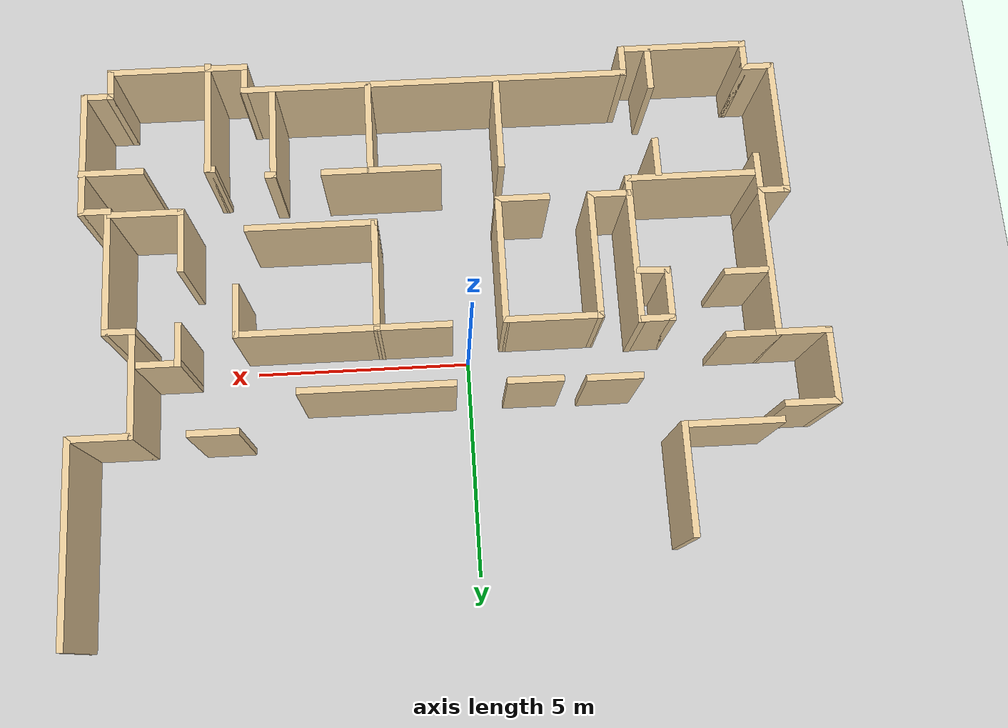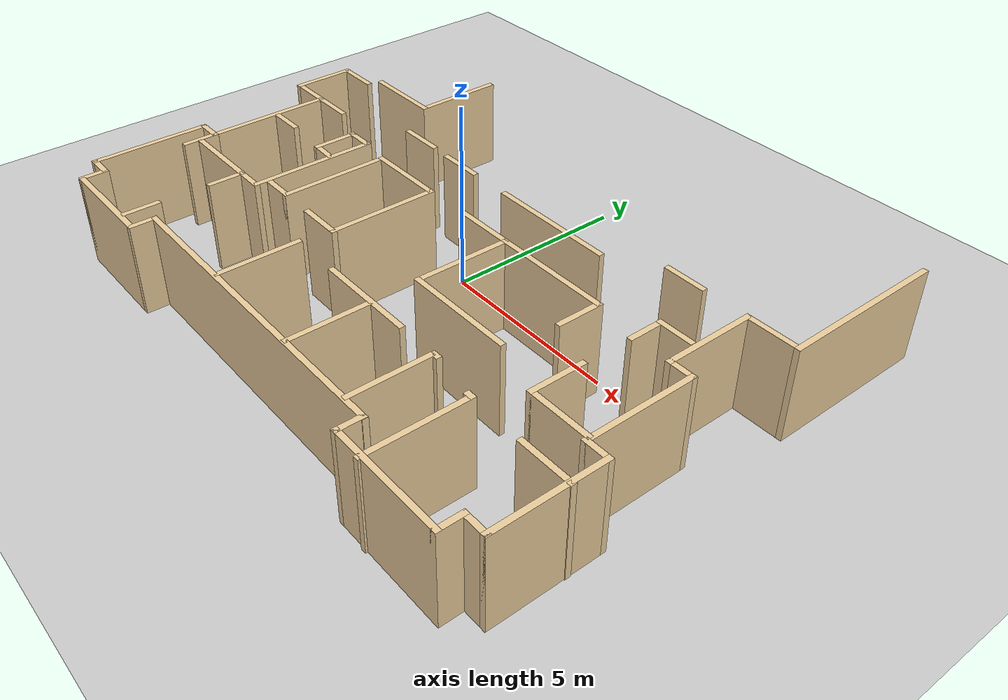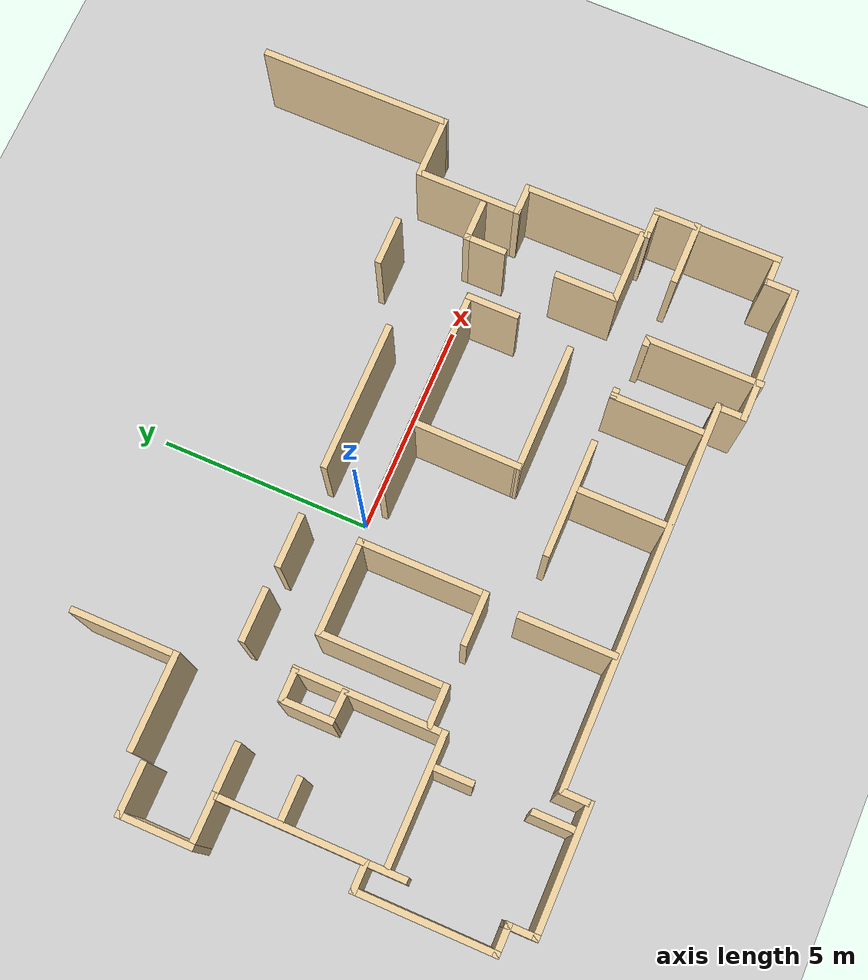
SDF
<sdf version="1.6">
 <world name="default">
  <model name="ground_plane">
   <static>1</static>
   <link name="link">
    <collision name="collision">
     <geometry><plane><normal>0 0 1</normal><size>100 100</size></plane></geometry>
     <surface><friction><ode><mu>100</mu><mu2>50</mu2></ode></friction></surface>
    </collision>
    <visual name="visual">
     <cast_shadows>0</cast_shadows>
     <geometry><plane><normal>0 0 1</normal><size>100 100</size></plane></geometry>
     <material>
      <script><uri>file://media/materials/scripts/gazebo.material</uri><name>Gazebo/Grey</name></script>
     </material>
    </visual>
   </link>
  </model>
  <model name="ASTI_Floor_plan">
   <pose>0.499295 4.1368 0 0 -0 0</pose>
   <link name="Wall_126">
    <collision name="Wall_126_Collision">
     <geometry><box><size>1.25 0.15 2.5</size></box></geometry>
     <pose>0 0 1.25 0 -0 0</pose>
    </collision>
    <visual name="Wall_126_Visual">
     <pose>0 0 1.25 0 -0 0</pose>
     <geometry><box><size>1.25 0.15 2.5</size></box></geometry>
     <material>
      <script><uri>file://media/materials/scripts/gazebo.material</uri><name>Gazebo/Grey</name></script>
      <ambient>0.921569 0.807843 0.615686 1</ambient>
     </material>
    </visual>
    <pose>-6.73175 -3.8985 0 0 -0 0</pose>
   </link>
   <link name="Wall_129">
    <collision name="Wall_129_Collision">
     <geometry><box><size>1 0.15 2.5</size></box></geometry>
     <pose>0 0 1.25 0 -0 0</pose>
    </collision>
    <visual name="Wall_129_Visual">
     <pose>0 0 1.25 0 -0 0</pose>
     <geometry><box><size>1 0.15 2.5</size></box></geometry>
     <material>
      <script><uri>file://media/materials/scripts/gazebo.material</uri><name>Gazebo/Grey</name></script>
      <ambient>0.921569 0.807843 0.615686 1</ambient>
     </material>
    </visual>
    <pose>-6.73747 -5.34893 0 0 -0 3.14159</pose>
   </link>
   <link name="Wall_132">
    <collision name="Wall_132_Collision">
     <geometry><box><size>1.25 0.15 2.5</size></box></geometry>
     <pose>0 0 1.25 0 -0 0</pose>
    </collision>
    <visual name="Wall_132_Visual">
     <pose>0 0 1.25 0 -0 0</pose>
     <geometry><box><size>1.25 0.15 2.5</size></box></geometry>
     <material>
      <script><uri>file://media/materials/scripts/gazebo.material</uri><name>Gazebo/Grey</name></script>
      <ambient>0.921569 0.807843 0.615686 1</ambient>
     </material>
    </visual>
    <pose>-4.97877 -4.90514 0 0 0 -1.5708</pose>
   </link>
   <link name="Wall_133">
    <collision name="Wall_133_Collision">
     <geometry><box><size>0.753676 0.15 2.5</size></box></geometry>
     <pose>0 0 1.25 0 -0 0</pose>
    </collision>
    <visual name="Wall_133_Visual">
     <pose>0 0 1.25 0 -0 0</pose>
     <geometry><box><size>0.753676 0.15 2.5</size></box></geometry>
     <material>
      <script><uri>file://media/materials/scripts/gazebo.material</uri><name>Gazebo/Grey</name></script>
      <ambient>0.921569 0.807843 0.615686 1</ambient>
     </material>
    </visual>
    <pose>-4.65106 -5.46822 0 0 0 -0.043335</pose>
   </link>
   <link name="Wall_136">
    <collision name="Wall_136_Collision">
     <geometry><box><size>0.75 0.15 2.5</size></box></geometry>
     <pose>0 0 1.25 0 -0 0</pose>
    </collision>
    <visual name="Wall_136_Visual">
     <pose>0 0 1.25 0 -0 0</pose>
     <geometry><box><size>0.75 0.15 2.5</size></box></geometry>
     <material>
      <script><uri>file://media/materials/scripts/gazebo.material</uri><name>Gazebo/Grey</name></script>
      <ambient>0.921569 0.807843 0.615686 1</ambient>
     </material>
    </visual>
    <pose>-4.65262 -4.35514 0 0 -0 0</pose>
   </link>
   <link name="Wall_138">
    <collision name="Wall_138_Collision">
     <geometry><box><size>3.5 0.15 2.5</size></box></geometry>
     <pose>0 0 1.25 0 -0 0</pose>
    </collision>
    <visual name="Wall_138_Visual">
     <pose>0 0 1.25 0 -0 0</pose>
     <geometry><box><size>3.5 0.15 2.5</size></box></geometry>
     <material>
      <script><uri>file://media/materials/scripts/gazebo.material</uri><name>Gazebo/Grey</name></script>
      <ambient>0.921569 0.807843 0.615686 1</ambient>
     </material>
    </visual>
    <pose>-4.29876 -6.01707 0 0 0 -1.5708</pose>
   </link>
   <link name="Wall_139">
    <collision name="Wall_139_Collision">
     <geometry><box><size>3 0.15 2.5</size></box></geometry>
     <pose>0 0 1.25 0 -0 0</pose>
    </collision>
    <visual name="Wall_139_Visual">
     <pose>0 0 1.25 0 -0 0</pose>
     <geometry><box><size>3 0.15 2.5</size></box></geometry>
     <material>
      <script><uri>file://media/materials/scripts/gazebo.material</uri><name>Gazebo/Grey</name></script>
      <ambient>0.921569 0.807843 0.615686 1</ambient>
     </material>
    </visual>
    <pose>-5.72376 -7.69207 0 0 -0 3.14159</pose>
   </link>
   <link name="Wall_141">
    <collision name="Wall_141_Collision">
     <geometry><box><size>1 0.15 2.5</size></box></geometry>
     <pose>0 0 1.25 0 -0 0</pose>
    </collision>
    <visual name="Wall_141_Visual">
     <pose>0 0 1.25 0 -0 0</pose>
     <geometry><box><size>1 0.15 2.5</size></box></geometry>
     <material>
      <script><uri>file://media/materials/scripts/gazebo.material</uri><name>Gazebo/Grey</name></script>
      <ambient>0.921569 0.807843 0.615686 1</ambient>
     </material>
    </visual>
    <pose>-7.28175 -7.6735 0 0 0 -1.5708</pose>
   </link>
   <link name="Wall_143">
    <collision name="Wall_143_Collision">
     <geometry><box><size>1 0.15 2.5</size></box></geometry>
     <pose>0 0 1.25 0 -0 0</pose>
    </collision>
    <visual name="Wall_143_Visual">
     <pose>0 0 1.25 0 -0 0</pose>
     <geometry><box><size>1 0.15 2.5</size></box></geometry>
     <material>
      <script><uri>file://media/materials/scripts/gazebo.material</uri><name>Gazebo/Grey</name></script>
      <ambient>0.921569 0.807843 0.615686 1</ambient>
     </material>
    </visual>
    <pose>-3.83544 -7.34075 0 0 -0 0</pose>
   </link>
   <link name="Wall_144">
    <collision name="Wall_144_Collision">
     <geometry><box><size>3 0.15 2.5</size></box></geometry>
     <pose>0 0 1.25 0 -0 0</pose>
    </collision>
    <visual name="Wall_144_Visual">
     <pose>0 0 1.25 0 -0 0</pose>
     <geometry><box><size>3 0.15 2.5</size></box></geometry>
     <material>
      <script><uri>file://media/materials/scripts/gazebo.material</uri><name>Gazebo/Grey</name></script>
      <ambient>0.921569 0.807843 0.615686 1</ambient>
     </material>
    </visual>
    <pose>-3.41044 -5.91575 0 0 -0 1.5708</pose>
   </link>
   <link name="Wall_145">
    <collision name="Wall_145_Collision">
     <geometry><box><size>2.25 0.15 2.5</size></box></geometry>
     <pose>0 0 1.25 0 -0 0</pose>
    </collision>
    <visual name="Wall_145_Visual">
     <pose>0 0 1.25 0 -0 0</pose>
     <geometry><box><size>2.25 0.15 2.5</size></box></geometry>
     <material>
      <script><uri>file://media/materials/scripts/gazebo.material</uri><name>Gazebo/Grey</name></script>
      <ambient>0.921569 0.807843 0.615686 1</ambient>
     </material>
    </visual>
    <pose>-2.36044 -4.49075 0 0 -0 0</pose>
   </link>
   <link name="Wall_146">
    <collision name="Wall_146_Collision">
     <geometry><box><size>3 0.15 2.5</size></box></geometry>
     <pose>0 0 1.25 0 -0 0</pose>
    </collision>
    <visual name="Wall_146_Visual">
     <pose>0 0 1.25 0 -0 0</pose>
     <geometry><box><size>3 0.15 2.5</size></box></geometry>
     <material>
      <script><uri>file://media/materials/scripts/gazebo.material</uri><name>Gazebo/Grey</name></script>
      <ambient>0.921569 0.807843 0.615686 1</ambient>
     </material>
    </visual>
    <pose>-1.31044 -5.91575 0 0 0 -1.5708</pose>
   </link>
   <link name="Wall_147">
    <collision name="Wall_147_Collision">
     <geometry><box><size>1.25 0.15 2.5</size></box></geometry>
     <pose>0 0 1.25 0 -0 0</pose>
    </collision>
    <visual name="Wall_147_Visual">
     <pose>0 0 1.25 0 -0 0</pose>
     <geometry><box><size>1.25 0.15 2.5</size></box></geometry>
     <material>
      <script><uri>file://media/materials/scripts/gazebo.material</uri><name>Gazebo/Grey</name></script>
      <ambient>0.921569 0.807843 0.615686 1</ambient>
     </material>
    </visual>
    <pose>-1.86044 -7.34075 0 0 -0 3.14159</pose>
   </link>
   <link name="Wall_149">
    <collision name="Wall_149_Collision">
     <geometry><box><size>1.75 0.15 2.5</size></box></geometry>
     <pose>0 0 1.25 0 -0 0</pose>
    </collision>
    <visual name="Wall_149_Visual">
     <pose>0 0 1.25 0 -0 0</pose>
     <geometry><box><size>1.75 0.15 2.5</size></box></geometry>
     <material>
      <script><uri>file://media/materials/scripts/gazebo.material</uri><name>Gazebo/Grey</name></script>
      <ambient>0.921569 0.807843 0.615686 1</ambient>
     </material>
    </visual>
    <pose>0.740282 -4.4528 0 0 -0 0</pose>
   </link>
   <link name="Wall_150">
    <collision name="Wall_150_Collision">
     <geometry><box><size>2.59634 0.15 2.5</size></box></geometry>
     <pose>0 0 1.25 0 -0 0</pose>
    </collision>
    <visual name="Wall_150_Visual">
     <pose>0 0 1.25 0 -0 0</pose>
     <geometry><box><size>2.59634 0.15 2.5</size></box></geometry>
     <material>
      <script><uri>file://media/materials/scripts/gazebo.material</uri><name>Gazebo/Grey</name></script>
      <ambient>0.921569 0.807843 0.615686 1</ambient>
     </material>
    </visual>
    <pose>1.52721 -5.6759 0 0 0 -1.58149</pose>
   </link>
   <link name="Wall_152">
    <collision name="Wall_152_Collision">
     <geometry><box><size>3.25 0.15 2.5</size></box></geometry>
     <pose>0 0 1.25 0 -0 0</pose>
    </collision>
    <visual name="Wall_152_Visual">
     <pose>0 0 1.25 0 -0 0</pose>
     <geometry><box><size>3.25 0.15 2.5</size></box></geometry>
     <material>
      <script><uri>file://media/materials/scripts/gazebo.material</uri><name>Gazebo/Grey</name></script>
      <ambient>0.921569 0.807843 0.615686 1</ambient>
     </material>
    </visual>
    <pose>3.09028 -4.4528 0 0 -0 0</pose>
   </link>
   <link name="Wall_153">
    <collision name="Wall_153_Collision">
     <geometry><box><size>1.25 0.15 2.5</size></box></geometry>
     <pose>0 0 1.25 0 -0 0</pose>
    </collision>
    <visual name="Wall_153_Visual">
     <pose>0 0 1.25 0 -0 0</pose>
     <geometry><box><size>1.25 0.15 2.5</size></box></geometry>
     <material>
      <script><uri>file://media/materials/scripts/gazebo.material</uri><name>Gazebo/Grey</name></script>
      <ambient>0.921569 0.807843 0.615686 1</ambient>
     </material>
    </visual>
    <pose>4.64028 -5.00281 0 0 0 -1.5708</pose>
   </link>
   <link name="Wall_155">
    <collision name="Wall_155_Collision">
     <geometry><box><size>3 0.15 2.5</size></box></geometry>
     <pose>0 0 1.25 0 -0 0</pose>
    </collision>
    <visual name="Wall_155_Visual">
     <pose>0 0 1.25 0 -0 0</pose>
     <geometry><box><size>3 0.15 2.5</size></box></geometry>
     <material>
      <script><uri>file://media/materials/scripts/gazebo.material</uri><name>Gazebo/Grey</name></script>
      <ambient>0.921569 0.807843 0.615686 1</ambient>
     </material>
    </visual>
    <pose>2.93913 -6.92515 0 0 -0 3.14159</pose>
   </link>
   <link name="Wall_157">
    <collision name="Wall_157_Collision">
     <geometry><box><size>1 0.15 2.5</size></box></geometry>
     <pose>0 0 1.25 0 -0 0</pose>
    </collision>
    <visual name="Wall_157_Visual">
     <pose>0 0 1.25 0 -0 0</pose>
     <geometry><box><size>1 0.15 2.5</size></box></geometry>
     <material>
      <script><uri>file://media/materials/scripts/gazebo.material</uri><name>Gazebo/Grey</name></script>
      <ambient>0.921569 0.807843 0.615686 1</ambient>
     </material>
    </visual>
    <pose>-5.00425 -8.15258 0 0 0 -1.5708</pose>
   </link>
   <link name="Wall_159">
    <collision name="Wall_159_Collision">
     <geometry><box><size>1 0.15 2.5</size></box></geometry>
     <pose>0 0 1.25 0 -0 0</pose>
    </collision>
    <visual name="Wall_159_Visual">
     <pose>0 0 1.25 0 -0 0</pose>
     <geometry><box><size>1 0.15 2.5</size></box></geometry>
     <material>
      <script><uri>file://media/materials/scripts/gazebo.material</uri><name>Gazebo/Grey</name></script>
      <ambient>0.921569 0.807843 0.615686 1</ambient>
     </material>
    </visual>
    <pose>-5.03883 -10.4165 0 0 0 -1.5708</pose>
   </link>
   <link name="Wall_161">
    <collision name="Wall_161_Collision">
     <geometry><box><size>2.25 0.15 2.5</size></box></geometry>
     <pose>0 0 1.25 0 -0 0</pose>
    </collision>
    <visual name="Wall_161_Visual">
     <pose>0 0 1.25 0 -0 0</pose>
     <geometry><box><size>2.25 0.15 2.5</size></box></geometry>
     <material>
      <script><uri>file://media/materials/scripts/gazebo.material</uri><name>Gazebo/Grey</name></script>
      <ambient>0.921569 0.807843 0.615686 1</ambient>
     </material>
    </visual>
    <pose>-1.44187 -9.24449 0 0 0 -1.5708</pose>
   </link>
   <link name="Wall_163">
    <collision name="Wall_163_Collision">
     <geometry><box><size>2.75 0.15 2.5</size></box></geometry>
     <pose>0 0 1.25 0 -0 0</pose>
    </collision>
    <visual name="Wall_163_Visual">
     <pose>0 0 1.25 0 -0 0</pose>
     <geometry><box><size>2.75 0.15 2.5</size></box></geometry>
     <material>
      <script><uri>file://media/materials/scripts/gazebo.material</uri><name>Gazebo/Grey</name></script>
      <ambient>0.921569 0.807843 0.615686 1</ambient>
     </material>
    </visual>
    <pose>1.30974 -8.19449 0 0 -0 0</pose>
   </link>
   <link name="Wall_165">
    <collision name="Wall_165_Collision">
     <geometry><box><size>2.25 0.15 2.5</size></box></geometry>
     <pose>0 0 1.25 0 -0 0</pose>
    </collision>
    <visual name="Wall_165_Visual">
     <pose>0 0 1.25 0 -0 0</pose>
     <geometry><box><size>2.25 0.15 2.5</size></box></geometry>
     <material>
      <script><uri>file://media/materials/scripts/gazebo.material</uri><name>Gazebo/Grey</name></script>
      <ambient>0.921569 0.807843 0.615686 1</ambient>
     </material>
    </visual>
    <pose>1.54984 -9.26178 0 0 0 -1.5708</pose>
   </link>
   <link name="Wall_167">
    <collision name="Wall_167_Collision">
     <geometry><box><size>0.25 0.15 2.5</size></box></geometry>
     <pose>0 0 1.25 0 -0 0</pose>
    </collision>
    <visual name="Wall_167_Visual">
     <pose>0 0 1.25 0 -0 0</pose>
     <geometry><box><size>0.25 0.15 2.5</size></box></geometry>
     <material>
      <script><uri>file://media/materials/scripts/gazebo.material</uri><name>Gazebo/Grey</name></script>
      <ambient>0.921569 0.807843 0.615686 1</ambient>
     </material>
    </visual>
    <pose>3.83441 -8.19449 0 0 -0 3.14159</pose>
   </link>
   <link name="Wall_168">
    <collision name="Wall_168_Collision">
     <geometry><box><size>2.25 0.15 2.5</size></box></geometry>
     <pose>0 0 1.25 0 -0 0</pose>
    </collision>
    <visual name="Wall_168_Visual">
     <pose>0 0 1.25 0 -0 0</pose>
     <geometry><box><size>2.25 0.15 2.5</size></box></geometry>
     <material>
      <script><uri>file://media/materials/scripts/gazebo.material</uri><name>Gazebo/Grey</name></script>
      <ambient>0.921569 0.807843 0.615686 1</ambient>
     </material>
    </visual>
    <pose>3.76712 -9.24449 0 0 0 -1.5708</pose>
   </link>
   <link name="Wall_170">
    <collision name="Wall_170_Collision">
     <geometry><box><size>0.25 0.15 2.5</size></box></geometry>
     <pose>0 0 1.25 0 -0 0</pose>
    </collision>
    <visual name="Wall_170_Visual">
     <pose>0 0 1.25 0 -0 0</pose>
     <geometry><box><size>0.25 0.15 2.5</size></box></geometry>
     <material>
      <script><uri>file://media/materials/scripts/gazebo.material</uri><name>Gazebo/Grey</name></script>
      <ambient>0.921569 0.807843 0.615686 1</ambient>
     </material>
    </visual>
    <pose>5.2141 -8.40201 0 0 -0 0</pose>
   </link>
   <link name="Wall_171">
    <collision name="Wall_171_Collision">
     <geometry><box><size>2.75 0.15 2.5</size></box></geometry>
     <pose>0 0 1.25 0 -0 0</pose>
    </collision>
    <visual name="Wall_171_Visual">
     <pose>0 0 1.25 0 -0 0</pose>
     <geometry><box><size>2.75 0.15 2.5</size></box></geometry>
     <material>
      <script><uri>file://media/materials/scripts/gazebo.material</uri><name>Gazebo/Grey</name></script>
      <ambient>0.921569 0.807843 0.615686 1</ambient>
     </material>
    </visual>
    <pose>5.2641 -9.70201 0 0 0 -1.5708</pose>
   </link>
   <link name="Wall_173">
    <collision name="Wall_173_Collision">
     <geometry><box><size>1.5 0.15 2.5</size></box></geometry>
     <pose>0 0 1.25 0 -0 0</pose>
    </collision>
    <visual name="Wall_173_Visual">
     <pose>0 0 1.25 0 -0 0</pose>
     <geometry><box><size>1.5 0.15 2.5</size></box></geometry>
     <material>
      <script><uri>file://media/materials/scripts/gazebo.material</uri><name>Gazebo/Grey</name></script>
      <ambient>0.921569 0.807843 0.615686 1</ambient>
     </material>
    </visual>
    <pose>7.46315 -8.43659 0 0 -0 0</pose>
   </link>
   <link name="Wall_175">
    <collision name="Wall_175_Collision">
     <geometry><box><size>1 0.15 2.5</size></box></geometry>
     <pose>0 0 1.25 0 -0 0</pose>
    </collision>
    <visual name="Wall_175_Visual">
     <pose>0 0 1.25 0 -0 0</pose>
     <geometry><box><size>1 0.15 2.5</size></box></geometry>
     <material>
      <script><uri>file://media/materials/scripts/gazebo.material</uri><name>Gazebo/Grey</name></script>
      <ambient>0.921569 0.807843 0.615686 1</ambient>
     </material>
    </visual>
    <pose>6.33251 -3.8679 0 0 -0 3.14159</pose>
   </link>
   <link name="Wall_176">
    <collision name="Wall_176_Collision">
     <geometry><box><size>1 0.15 2.5</size></box></geometry>
     <pose>0 0 1.25 0 -0 0</pose>
    </collision>
    <visual name="Wall_176_Visual">
     <pose>0 0 1.25 0 -0 0</pose>
     <geometry><box><size>1 0.15 2.5</size></box></geometry>
     <material>
      <script><uri>file://media/materials/scripts/gazebo.material</uri><name>Gazebo/Grey</name></script>
      <ambient>0.921569 0.807843 0.615686 1</ambient>
     </material>
    </visual>
    <pose>5.90751 -4.2929 0 0 0 -1.5708</pose>
   </link>
   <link name="Wall_178">
    <collision name="Wall_178_Collision">
     <geometry><box><size>1.5 0.15 2.5</size></box></geometry>
     <pose>0 0 1.25 0 -0 0</pose>
    </collision>
    <visual name="Wall_178_Visual">
     <pose>0 0 1.25 0 -0 0</pose>
     <geometry><box><size>1.5 0.15 2.5</size></box></geometry>
     <material>
      <script><uri>file://media/materials/scripts/gazebo.material</uri><name>Gazebo/Grey</name></script>
      <ambient>0.921569 0.807843 0.615686 1</ambient>
     </material>
    </visual>
    <pose>5.86259 -6.72477 0 0 0 -1.5708</pose>
   </link>
   <link name="Wall_179">
    <collision name="Wall_179_Collision">
     <geometry><box><size>1.75 0.15 2.5</size></box></geometry>
     <pose>0 0 1.25 0 -0 0</pose>
    </collision>
    <visual name="Wall_179_Visual">
     <pose>0 0 1.25 0 -0 0</pose>
     <geometry><box><size>1.75 0.15 2.5</size></box></geometry>
     <material>
      <script><uri>file://media/materials/scripts/gazebo.material</uri><name>Gazebo/Grey</name></script>
      <ambient>0.921569 0.807843 0.615686 1</ambient>
     </material>
    </visual>
    <pose>6.66259 -7.39977 0 0 -0 0</pose>
   </link>
   <link name="Wall_2">
    <collision name="Wall_2_Collision">
     <geometry><box><size>3.5 0.15 2.5</size></box></geometry>
     <pose>0 0 1.25 0 -0 0</pose>
    </collision>
    <visual name="Wall_2_Visual">
     <pose>0 0 1.25 0 -0 0</pose>
     <geometry><box><size>3.5 0.15 2.5</size></box></geometry>
     <material>
      <script><uri>file://media/materials/scripts/gazebo.material</uri><name>Gazebo/Grey</name></script>
      <ambient>0.921569 0.807843 0.615686 1</ambient>
     </material>
    </visual>
    <pose>1.5978 -3.11358 0 0 -0 3.14159</pose>
   </link>
   <link name="Wall_59">
    <collision name="Wall_59_Collision">
     <geometry><box><size>1.1485 0.15 2.5</size></box></geometry>
     <pose>0 0 1.25 0 -0 0</pose>
    </collision>
    <visual name="Wall_59_Visual">
     <pose>0 0 1.25 0 -0 0</pose>
     <geometry><box><size>1.1485 0.15 2.5</size></box></geometry>
     <material>
      <script><uri>file://media/materials/scripts/gazebo.material</uri><name>Gazebo/Grey</name></script>
      <ambient>0.921569 0.807843 0.615686 1</ambient>
     </material>
    </visual>
    <pose>5.14469 -2.2954 0 0 -0 0</pose>
   </link>
   <link name="Wall_6">
    <collision name="Wall_6_Collision">
     <geometry><box><size>1.25 0.15 2.5</size></box></geometry>
     <pose>0 0 1.25 0 -0 0</pose>
    </collision>
    <visual name="Wall_6_Visual">
     <pose>0 0 1.25 0 -0 0</pose>
     <geometry><box><size>1.25 0.15 2.5</size></box></geometry>
     <material>
      <script><uri>file://media/materials/scripts/gazebo.material</uri><name>Gazebo/Grey</name></script>
      <ambient>0.921569 0.807843 0.615686 1</ambient>
     </material>
    </visual>
    <pose>-3.60024 -3.07903 0 0 -0 0</pose>
   </link>
   <link name="Wall_71">
    <collision name="Wall_71_Collision">
     <geometry><box><size>2.25 0.15 2.5</size></box></geometry>
     <pose>0 0 1.25 0 -0 0</pose>
    </collision>
    <visual name="Wall_71_Visual">
     <pose>0 0 1.25 0 -0 0</pose>
     <geometry><box><size>2.25 0.15 2.5</size></box></geometry>
     <material>
      <script><uri>file://media/materials/scripts/gazebo.material</uri><name>Gazebo/Grey</name></script>
      <ambient>0.921569 0.807843 0.615686 1</ambient>
     </material>
    </visual>
    <pose>-6.04863 -1.94952 0 0 -0 0</pose>
   </link>
   <link name="Wall_72">
    <collision name="Wall_72_Collision">
     <geometry><box><size>2.5 0.15 2.5</size></box></geometry>
     <pose>0 0 1.25 0 -0 0</pose>
    </collision>
    <visual name="Wall_72_Visual">
     <pose>0 0 1.25 0 -0 0</pose>
     <geometry><box><size>2.5 0.15 2.5</size></box></geometry>
     <material>
      <script><uri>file://media/materials/scripts/gazebo.material</uri><name>Gazebo/Grey</name></script>
      <ambient>0.921569 0.807843 0.615686 1</ambient>
     </material>
    </visual>
    <pose>-4.99862 -0.774518 0 0 -0 1.5708</pose>
   </link>
   <link name="Wall_75">
    <collision name="Wall_75_Collision">
     <geometry><box><size>3.5 0.15 2.5</size></box></geometry>
     <pose>0 0 1.25 0 -0 0</pose>
    </collision>
    <visual name="Wall_75_Visual">
     <pose>0 0 1.25 0 -0 0</pose>
     <geometry><box><size>3.5 0.15 2.5</size></box></geometry>
     <material>
      <script><uri>file://media/materials/scripts/gazebo.material</uri><name>Gazebo/Grey</name></script>
      <ambient>0.921569 0.807843 0.615686 1</ambient>
     </material>
    </visual>
    <pose>-7.28175 -5.5735 0 0 0 -1.5708</pose>
   </link>
   <link name="Wall_76">
    <collision name="Wall_76_Collision">
     <geometry><box><size>0.75 0.15 2.5</size></box></geometry>
     <pose>0 0 1.25 0 -0 0</pose>
    </collision>
    <visual name="Wall_76_Visual">
     <pose>0 0 1.25 0 -0 0</pose>
     <geometry><box><size>0.75 0.15 2.5</size></box></geometry>
     <material>
      <script><uri>file://media/materials/scripts/gazebo.material</uri><name>Gazebo/Grey</name></script>
      <ambient>0.921569 0.807843 0.615686 1</ambient>
     </material>
    </visual>
    <pose>-7.58175 -7.2485 0 0 -0 3.14159</pose>
   </link>
   <link name="Wall_77">
    <collision name="Wall_77_Collision">
     <geometry><box><size>3.25 0.15 2.5</size></box></geometry>
     <pose>0 0 1.25 0 -0 0</pose>
    </collision>
    <visual name="Wall_77_Visual">
     <pose>0 0 1.25 0 -0 0</pose>
     <geometry><box><size>3.25 0.15 2.5</size></box></geometry>
     <material>
      <script><uri>file://media/materials/scripts/gazebo.material</uri><name>Gazebo/Grey</name></script>
      <ambient>0.921569 0.807843 0.615686 1</ambient>
     </material>
    </visual>
    <pose>-7.88175 -8.7985 0 0 0 -1.5708</pose>
   </link>
   <link name="Wall_78">
    <collision name="Wall_78_Collision">
     <geometry><box><size>0.75 0.15 2.5</size></box></geometry>
     <pose>0 0 1.25 0 -0 0</pose>
    </collision>
    <visual name="Wall_78_Visual">
     <pose>0 0 1.25 0 -0 0</pose>
     <geometry><box><size>0.75 0.15 2.5</size></box></geometry>
     <material>
      <script><uri>file://media/materials/scripts/gazebo.material</uri><name>Gazebo/Grey</name></script>
      <ambient>0.921569 0.807843 0.615686 1</ambient>
     </material>
    </visual>
    <pose>-7.58175 -10.3485 0 0 -0 0</pose>
   </link>
   <link name="Wall_79">
    <collision name="Wall_79_Collision">
     <geometry><box><size>0.75 0.15 2.5</size></box></geometry>
     <pose>0 0 1.25 0 -0 0</pose>
    </collision>
    <visual name="Wall_79_Visual">
     <pose>0 0 1.25 0 -0 0</pose>
     <geometry><box><size>0.75 0.15 2.5</size></box></geometry>
     <material>
      <script><uri>file://media/materials/scripts/gazebo.material</uri><name>Gazebo/Grey</name></script>
      <ambient>0.921569 0.807843 0.615686 1</ambient>
     </material>
    </visual>
    <pose>-7.28175 -10.6485 0 0 0 -1.5708</pose>
   </link>
   <link name="Wall_8">
    <collision name="Wall_8_Collision">
     <geometry><box><size>1.25 0.15 2.5</size></box></geometry>
     <pose>0 0 1.25 0 -0 0</pose>
    </collision>
    <visual name="Wall_8_Visual">
     <pose>0 0 1.25 0 -0 0</pose>
     <geometry><box><size>1.25 0.15 2.5</size></box></geometry>
     <material>
      <script><uri>file://media/materials/scripts/gazebo.material</uri><name>Gazebo/Grey</name></script>
      <ambient>0.921569 0.807843 0.615686 1</ambient>
     </material>
    </visual>
    <pose>-1.87123 -3.10852 0 0 -0 0</pose>
   </link>
   <link name="Wall_80">
    <collision name="Wall_80_Collision">
     <geometry><box><size>3 0.15 2.5</size></box></geometry>
     <pose>0 0 1.25 0 -0 0</pose>
    </collision>
    <visual name="Wall_80_Visual">
     <pose>0 0 1.25 0 -0 0</pose>
     <geometry><box><size>3 0.15 2.5</size></box></geometry>
     <material>
      <script><uri>file://media/materials/scripts/gazebo.material</uri><name>Gazebo/Grey</name></script>
      <ambient>0.921569 0.807843 0.615686 1</ambient>
     </material>
    </visual>
    <pose>-5.85675 -10.9485 0 0 -0 0</pose>
   </link>
   <link name="Wall_81">
    <collision name="Wall_81_Collision">
     <geometry><box><size>0.750249 0.15 2.5</size></box></geometry>
     <pose>0 0 1.25 0 -0 0</pose>
    </collision>
    <visual name="Wall_81_Visual">
     <pose>0 0 1.25 0 -0 0</pose>
     <geometry><box><size>0.750249 0.15 2.5</size></box></geometry>
     <material>
      <script><uri>file://media/materials/scripts/gazebo.material</uri><name>Gazebo/Grey</name></script>
      <ambient>0.921569 0.807843 0.615686 1</ambient>
     </material>
    </visual>
    <pose>-4.43175 -10.6485 0 0 -0 1.5708</pose>
   </link>
   <link name="Wall_82">
    <collision name="Wall_82_Collision">
     <geometry><box><size>9 0.15 2.5</size></box></geometry>
     <pose>0 0 1.25 0 -0 0</pose>
    </collision>
    <visual name="Wall_82_Visual">
     <pose>0 0 1.25 0 -0 0</pose>
     <geometry><box><size>9 0.15 2.5</size></box></geometry>
     <material>
      <script><uri>file://media/materials/scripts/gazebo.material</uri><name>Gazebo/Grey</name></script>
      <ambient>0.921569 0.807843 0.615686 1</ambient>
     </material>
    </visual>
    <pose>0.010539 -10.3485 0 0 -0 0</pose>
   </link>
   <link name="Wall_83">
    <collision name="Wall_83_Collision">
     <geometry><box><size>0.750249 0.15 2.5</size></box></geometry>
     <pose>0 0 1.25 0 -0 0</pose>
    </collision>
    <visual name="Wall_83_Visual">
     <pose>0 0 1.25 0 -0 0</pose>
     <geometry><box><size>0.750249 0.15 2.5</size></box></geometry>
     <material>
      <script><uri>file://media/materials/scripts/gazebo.material</uri><name>Gazebo/Grey</name></script>
      <ambient>0.921569 0.807843 0.615686 1</ambient>
     </material>
    </visual>
    <pose>4.41825 -10.6485 0 0 0 -1.5708</pose>
   </link>
   <link name="Wall_84">
    <collision name="Wall_84_Collision">
     <geometry><box><size>3.25 0.15 2.5</size></box></geometry>
     <pose>0 0 1.25 0 -0 0</pose>
    </collision>
    <visual name="Wall_84_Visual">
     <pose>0 0 1.25 0 -0 0</pose>
     <geometry><box><size>3.25 0.15 2.5</size></box></geometry>
     <material>
      <script><uri>file://media/materials/scripts/gazebo.material</uri><name>Gazebo/Grey</name></script>
      <ambient>0.921569 0.807843 0.615686 1</ambient>
     </material>
    </visual>
    <pose>5.96825 -10.9485 0 0 -0 0</pose>
   </link>
   <link name="Wall_85">
    <collision name="Wall_85_Collision">
     <geometry><box><size>0.75 0.15 2.5</size></box></geometry>
     <pose>0 0 1.25 0 -0 0</pose>
    </collision>
    <visual name="Wall_85_Visual">
     <pose>0 0 1.25 0 -0 0</pose>
     <geometry><box><size>0.75 0.15 2.5</size></box></geometry>
     <material>
      <script><uri>file://media/materials/scripts/gazebo.material</uri><name>Gazebo/Grey</name></script>
      <ambient>0.921569 0.807843 0.615686 1</ambient>
     </material>
    </visual>
    <pose>7.51825 -10.6485 0 0 -0 1.5708</pose>
   </link>
   <link name="Wall_86">
    <collision name="Wall_86_Collision">
     <geometry><box><size>0.75 0.15 2.5</size></box></geometry>
     <pose>0 0 1.25 0 -0 0</pose>
    </collision>
    <visual name="Wall_86_Visual">
     <pose>0 0 1.25 0 -0 0</pose>
     <geometry><box><size>0.75 0.15 2.5</size></box></geometry>
     <material>
      <script><uri>file://media/materials/scripts/gazebo.material</uri><name>Gazebo/Grey</name></script>
      <ambient>0.921569 0.807843 0.615686 1</ambient>
     </material>
    </visual>
    <pose>7.81825 -10.3485 0 0 -0 0</pose>
   </link>
   <link name="Wall_87">
    <collision name="Wall_87_Collision">
     <geometry><box><size>3 0.15 2.5</size></box></geometry>
     <pose>0 0 1.25 0 -0 0</pose>
    </collision>
    <visual name="Wall_87_Visual">
     <pose>0 0 1.25 0 -0 0</pose>
     <geometry><box><size>3 0.15 2.5</size></box></geometry>
     <material>
      <script><uri>file://media/materials/scripts/gazebo.material</uri><name>Gazebo/Grey</name></script>
      <ambient>0.921569 0.807843 0.615686 1</ambient>
     </material>
    </visual>
    <pose>8.11825 -8.9235 0 0 -0 1.5708</pose>
   </link>
   <link name="Wall_88">
    <collision name="Wall_88_Collision">
     <geometry><box><size>0.75 0.15 2.5</size></box></geometry>
     <pose>0 0 1.25 0 -0 0</pose>
    </collision>
    <visual name="Wall_88_Visual">
     <pose>0 0 1.25 0 -0 0</pose>
     <geometry><box><size>0.75 0.15 2.5</size></box></geometry>
     <material>
      <script><uri>file://media/materials/scripts/gazebo.material</uri><name>Gazebo/Grey</name></script>
      <ambient>0.921569 0.807843 0.615686 1</ambient>
     </material>
    </visual>
    <pose>7.81825 -7.4985 0 0 -0 3.14159</pose>
   </link>
   <link name="Wall_89">
    <collision name="Wall_89_Collision">
     <geometry><box><size>3 0.15 2.5</size></box></geometry>
     <pose>0 0 1.25 0 -0 0</pose>
    </collision>
    <visual name="Wall_89_Visual">
     <pose>0 0 1.25 0 -0 0</pose>
     <geometry><box><size>3 0.15 2.5</size></box></geometry>
     <material>
      <script><uri>file://media/materials/scripts/gazebo.material</uri><name>Gazebo/Grey</name></script>
      <ambient>0.921569 0.807843 0.615686 1</ambient>
     </material>
    </visual>
    <pose>7.51825 -6.0735 0 0 -0 1.5708</pose>
   </link>
   <link name="Wall_90">
    <collision name="Wall_90_Collision">
     <geometry><box><size>0.75 0.15 2.5</size></box></geometry>
     <pose>0 0 1.25 0 -0 0</pose>
    </collision>
    <visual name="Wall_90_Visual">
     <pose>0 0 1.25 0 -0 0</pose>
     <geometry><box><size>0.75 0.15 2.5</size></box></geometry>
     <material>
      <script><uri>file://media/materials/scripts/gazebo.material</uri><name>Gazebo/Grey</name></script>
      <ambient>0.921569 0.807843 0.615686 1</ambient>
     </material>
    </visual>
    <pose>7.21825 -4.6485 0 0 -0 3.14159</pose>
   </link>
   <link name="Wall_91">
    <collision name="Wall_91_Collision">
     <geometry><box><size>2.5 0.15 2.5</size></box></geometry>
     <pose>0 0 1.25 0 -0 0</pose>
    </collision>
    <visual name="Wall_91_Visual">
     <pose>0 0 1.25 0 -0 0</pose>
     <geometry><box><size>2.5 0.15 2.5</size></box></geometry>
     <material>
      <script><uri>file://media/materials/scripts/gazebo.material</uri><name>Gazebo/Grey</name></script>
      <ambient>0.921569 0.807843 0.615686 1</ambient>
     </material>
    </visual>
    <pose>6.91825 -3.4735 0 0 -0 1.5708</pose>
   </link>
   <link name="Wall_92">
    <collision name="Wall_92_Collision">
     <geometry><box><size>1.5 0.15 2.5</size></box></geometry>
     <pose>0 0 1.25 0 -0 0</pose>
    </collision>
    <visual name="Wall_92_Visual">
     <pose>0 0 1.25 0 -0 0</pose>
     <geometry><box><size>1.5 0.15 2.5</size></box></geometry>
     <material>
      <script><uri>file://media/materials/scripts/gazebo.material</uri><name>Gazebo/Grey</name></script>
      <ambient>0.921569 0.807843 0.615686 1</ambient>
     </material>
    </visual>
    <pose>7.59325 -2.2985 0 0 -0 0</pose>
   </link>
   <link name="Wall_93">
    <collision name="Wall_93_Collision">
     <geometry><box><size>4.5 0.15 2.5</size></box></geometry>
     <pose>0 0 1.25 0 -0 0</pose>
    </collision>
    <visual name="Wall_93_Visual">
     <pose>0 0 1.25 0 -0 0</pose>
     <geometry><box><size>4.5 0.15 2.5</size></box></geometry>
     <material>
      <script><uri>file://media/materials/scripts/gazebo.material</uri><name>Gazebo/Grey</name></script>
      <ambient>0.921569 0.807843 0.615686 1</ambient>
     </material>
    </visual>
    <pose>8.26825 -0.123501 0 0 -0 1.5708</pose>
   </link>
   <link name="Wall_97">
    <collision name="Wall_97_Collision">
     <geometry><box><size>1.25 0.15 2.5</size></box></geometry>
     <pose>0 0 1.25 0 -0 0</pose>
    </collision>
    <visual name="Wall_97_Visual">
     <pose>0 0 1.25 0 -0 0</pose>
     <geometry><box><size>1.25 0.15 2.5</size></box></geometry>
     <material>
      <script><uri>file://media/materials/scripts/gazebo.material</uri><name>Gazebo/Grey</name></script>
      <ambient>0.921569 0.807843 0.615686 1</ambient>
     </material>
    </visual>
    <pose>-7.83175 -3.8985 0 0 -0 3.14159</pose>
   </link>
   <link name="Wall_98">
    <collision name="Wall_98_Collision">
     <geometry><box><size>1.75 0.15 2.5</size></box></geometry>
     <pose>0 0 1.25 0 -0 0</pose>
    </collision>
    <visual name="Wall_98_Visual">
     <pose>0 0 1.25 0 -0 0</pose>
     <geometry><box><size>1.75 0.15 2.5</size></box></geometry>
     <material>
      <script><uri>file://media/materials/scripts/gazebo.material</uri><name>Gazebo/Grey</name></script>
      <ambient>0.921569 0.807843 0.615686 1</ambient>
     </material>
    </visual>
    <pose>-8.38175 -3.0985 0 0 -0 1.5708</pose>
   </link>
   <link name="Wall_99">
    <collision name="Wall_99_Collision">
     <geometry><box><size>1.25 0.15 2.5</size></box></geometry>
     <pose>0 0 1.25 0 -0 0</pose>
    </collision>
    <visual name="Wall_99_Visual">
     <pose>0 0 1.25 0 -0 0</pose>
     <geometry><box><size>1.25 0.15 2.5</size></box></geometry>
     <material>
      <script><uri>file://media/materials/scripts/gazebo.material</uri><name>Gazebo/Grey</name></script>
      <ambient>0.921569 0.807843 0.615686 1</ambient>
     </material>
    </visual>
    <pose>-7.83175 -2.2985 0 0 -0 0</pose>
   </link>
   <static>1</static>
  </model>
 </world>
</sdf>
